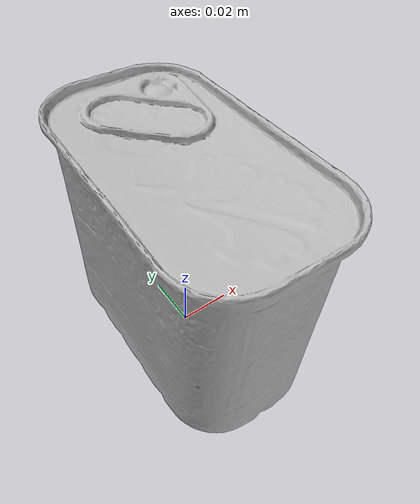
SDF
<?xml version="1.0"?>
<sdf version="1.6">
  <model name="potted_meat_can">
    <link name="link">
      <inertial>
        <mass>0.370</mass>
        <inertia>
          <ixx>0.000497434</ixx>
          <ixy>0.0</ixy>
          <ixz>0.0</ixz>
          <iyy>0.000284407</iyy>
          <iyz>0.0</iyz>
          <izz>0.000367194</izz>
        </inertia>
        <pose>0 0 0.041 0 0 0</pose>
      </inertial>
      <collision name="collision">
        <pose>0 0 0.041 0 0 0</pose>
        <geometry>
          <box>
            <size>0.050 0.097 0.082</size>
          </box>
        </geometry>
      </collision>
      <visual name="visual">
        <!-- 保留原有绕 Z 轴 1.5 rad 的边长对应，仅修正中心偏移。 -->
        <pose>-0.000203250 -0.000041670 -0.000868438 0 0 1.5</pose>
        <geometry>
          <mesh>
            <uri>model://potted_meat_can/meshes/textured.dae</uri>
          </mesh>
        </geometry>
      </visual>
    </link>
  </model>
</sdf>
